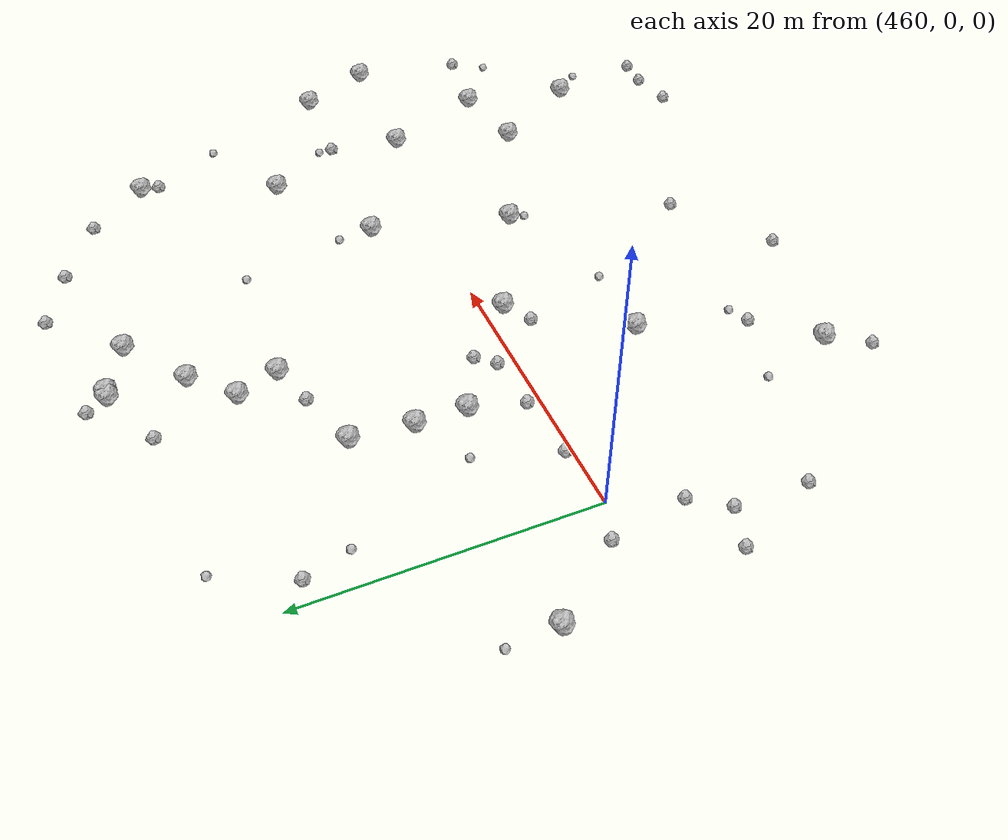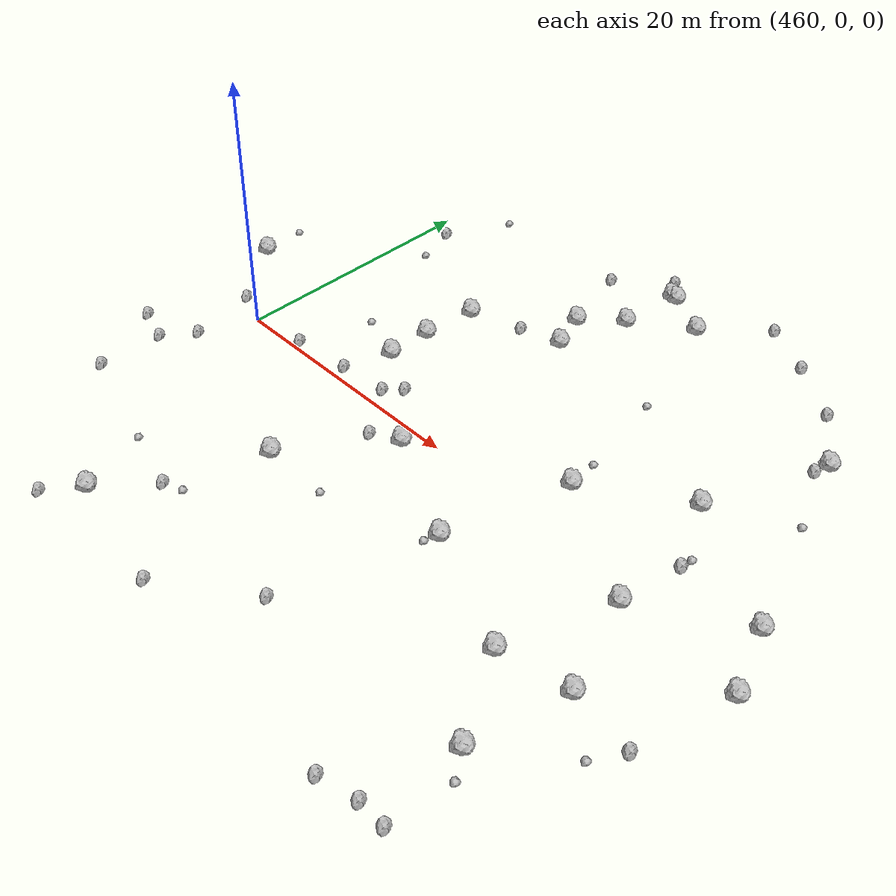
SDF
<sdf version="1.6">
 <world name="default">
  <include><uri>model://sun</uri></include>
  <model name="rock1_12_4">
   <include><uri>model://rock1</uri><pose>470.6151184059543 12.34620127630511 0.5 0 0 0</pose></include>
  </model>
  <model name="rock1_12_5">
   <include><uri>model://rock1</uri><pose>486.22943412523546 -5.646276234641231 0.5 0 0 0</pose></include>
  </model>
  <model name="rock1_12_6">
   <include><uri>model://rock1</uri><pose>500.5372356648056 -8.619539766389082 0.5 0 0 0</pose></include>
  </model>
  <model name="rock1_12_7">
   <include><uri>model://rock1</uri><pose>479.8587583547369 25.112894165132325 0.5 0 0 0</pose></include>
  </model>
  <model name="rock1_12_8">
   <include><uri>model://rock1</uri><pose>476.84056838398743 17.51059191724177 0.5 0 0 0</pose></include>
  </model>
  <model name="rock1_12_9">
   <include><uri>model://rock1</uri><pose>480.34715567198856 25.048559017967143 0.5 0 0 0</pose></include>
  </model>
  <model name="rock1_12_10">
   <include><uri>model://rock1</uri><pose>495.9661849295277 8.623692738267046 0.5 0 0 0</pose></include>
  </model>
  <model name="rock1_12_11">
   <include><uri>model://rock1</uri><pose>488.79647525616406 3.96769877872255 0.5 0 0 0</pose></include>
  </model>
  <model name="rock1_12_12">
   <include><uri>model://rock1</uri><pose>470.2062114927169 8.104621147277257 0.5 0 0 0</pose></include>
  </model>
  <model name="rock1_12_13">
   <include><uri>model://rock1</uri><pose>479.5690700209969 20.054851665725018 0.5 0 0 0</pose></include>
  </model>
  <model name="rock1_12_14">
   <include><uri>model://rock1</uri><pose>466.90203911596666 -19.544186248456636 0.5 0 0 0</pose></include>
  </model>
  <model name="rock1_12_15">
   <include><uri>model://rock1</uri><pose>477.8707376518834 -1.358789525222658 0.5 0 0 0</pose></include>
  </model>
  <model name="rock1_12_16">
   <include><uri>model://rock1</uri><pose>477.8711203572989 14.524592341520595 0.5 0 0 0</pose></include>
  </model>
  <model name="rock1_12_17">
   <include><uri>model://rock1</uri><pose>507.14053510778774 -1.9898403768795845 0.5 0 0 0</pose></include>
  </model>
  <model name="rock1_12_18">
   <include><uri>model://rock1</uri><pose>453.2257287647838 6.2590307215273455 0.5 0 0 0</pose></include>
  </model>
  <model name="rock1_12_19">
   <include><uri>model://rock1</uri><pose>495.226375937523 -9.645968867606506 0.5 0 0 0</pose></include>
  </model>
  <model name="rock1_12_20">
   <include><uri>model://rock1</uri><pose>498.92480981404907 -15.840052478565013 0.5 0 0 0</pose></include>
  </model>
  <model name="rock1_12_21">
   <include><uri>model://rock1</uri><pose>497.82548202293555 -1.4998680141681646 0.5 0 0 0</pose></include>
  </model>
  <model name="rock1_12_22">
   <include><uri>model://rock1</uri><pose>483.8711170464764 23.099798009684086 0.5 0 0 0</pose></include>
  </model>
  <model name="rock1_12_23">
   <include><uri>model://rock1</uri><pose>472.61430453250665 -8.606355690586629 0.5 0 0 0</pose></include>
  </model>
  <model name="rock1_12_24">
   <include><uri>model://rock1</uri><pose>505.1047096929792 2.986199472673981 0.5 0 0 0</pose></include>
  </model>
  <model name="rock1_12_25">
   <include><uri>model://rock1</uri><pose>470.1680328726894 4.573369024234175 0.5 0 0 0</pose></include>
  </model>
  <model name="rock1_12_26">
   <include><uri>model://rock1</uri><pose>499.5272384841301 17.865334878985173 0.5 0 0 0</pose></include>
  </model>
  <model name="rock2_12_0">
   <include><uri>model://rock2</uri><pose>472.9082335806386 1.2442766676785304 0.3 0 0 0</pose></include>
  </model>
  <model name="rock2_12_1">
   <include><uri>model://rock2</uri><pose>478.94073624219925 26.61789037535319 0.3 0 0 0</pose></include>
  </model>
  <model name="rock2_12_2">
   <include><uri>model://rock2</uri><pose>461.5976579464 18.325259100506983 0.3 0 0 0</pose></include>
  </model>
  <model name="rock2_12_3">
   <include><uri>model://rock2</uri><pose>499.2248780493118 16.627153532095186 0.3 0 0 0</pose></include>
  </model>
  <model name="rock2_12_4">
   <include><uri>model://rock2</uri><pose>492.0827567216489 25.072050500479456 0.3 0 0 0</pose></include>
  </model>
  <model name="rock2_12_5">
   <include><uri>model://rock2</uri><pose>498.5888669909872 3.4294246629389704 0.3 0 0 0</pose></include>
  </model>
  <model name="rock2_12_6">
   <include><uri>model://rock2</uri><pose>458.3522232453633 -4.3334630832857215 0.3 0 0 0</pose></include>
  </model>
  <model name="rock2_12_7">
   <include><uri>model://rock2</uri><pose>505.4834941784646 -9.384659312679677 0.3 0 0 0</pose></include>
  </model>
  <model name="rock2_12_8">
   <include><uri>model://rock2</uri><pose>475.81439648148006 -2.492878332179302 0.3 0 0 0</pose></include>
  </model>
  <model name="rock2_12_9">
   <include><uri>model://rock2</uri><pose>465.0641946011777 -22.08691860303254 0.3 0 0 0</pose></include>
  </model>
  <model name="rock2_12_10">
   <include><uri>model://rock2</uri><pose>464.4393917511466 0.5250547507130712 0.3 0 0 0</pose></include>
  </model>
  <model name="rock2_12_11">
   <include><uri>model://rock2</uri><pose>474.7049596662432 13.611505052982785 0.3 0 0 0</pose></include>
  </model>
  <model name="rock2_12_12">
   <include><uri>model://rock2</uri><pose>499.7164451895772 -22.299358047868143 0.3 0 0 0</pose></include>
  </model>
  <model name="rock2_12_13">
   <include><uri>model://rock2</uri><pose>456.67259628061504 -6.691129351137505 0.3 0 0 0</pose></include>
  </model>
  <model name="rock2_12_14">
   <include><uri>model://rock2</uri><pose>482.81761955478606 -16.90112237605024 0.3 0 0 0</pose></include>
  </model>
  <model name="rock2_12_15">
   <include><uri>model://rock2</uri><pose>476.4339155366638 -21.549568471011185 0.3 0 0 0</pose></include>
  </model>
  <model name="rock2_12_16">
   <include><uri>model://rock2</uri><pose>474.00444261770303 2.436608043646686 0.3 0 0 0</pose></include>
  </model>
  <model name="rock2_12_17">
   <include><uri>model://rock2</uri><pose>475.24888253688107 23.280431801240013 0.3 0 0 0</pose></include>
  </model>
  <model name="rock2_12_18">
   <include><uri>model://rock2</uri><pose>456.5808986373417 -11.730926959623439 0.3 0 0 0</pose></include>
  </model>
  <model name="rock2_12_19">
   <include><uri>model://rock2</uri><pose>469.0216573170071 0.9460546897607038 0.3 0 0 0</pose></include>
  </model>
  <model name="rock2_12_20">
   <include><uri>model://rock2</uri><pose>453.8222277324822 -5.761836847316136 0.3 0 0 0</pose></include>
  </model>
  <model name="rock2_12_21">
   <include><uri>model://rock2</uri><pose>496.42857731631597 22.0758337049393 0.3 0 0 0</pose></include>
  </model>
  <model name="rock2_12_22">
   <include><uri>model://rock2</uri><pose>488.06131537822444 27.254832841472762 0.3 0 0 0</pose></include>
  </model>
  <model name="rock2_12_23">
   <include><uri>model://rock2</uri><pose>457.2869290880362 1.072498411970983 0.3 0 0 0</pose></include>
  </model>
  <model name="rock2_12_24">
   <include><uri>model://rock2</uri><pose>470.100237107484 -15.709770790668234 0.3 0 0 0</pose></include>
  </model>
  <model name="rock2_12_25">
   <include><uri>model://rock2</uri><pose>497.61489401313224 -22.226576866354176 0.3 0 0 0</pose></include>
  </model>
  <model name="rock2_12_26">
   <include><uri>model://rock2</uri><pose>494.7692646295467 -22.86494145260165 0.3 0 0 0</pose></include>
  </model>
  <model name="rock3_12_0">
   <include><uri>model://rock3</uri><pose>471.51711174885133 -15.141390871853822 0.2 0 0 0</pose></include>
  </model>
  <model name="rock3_12_1">
   <include><uri>model://rock3</uri><pose>452.9793274020025 9.714597258592676 0.2 0 0 0</pose></include>
  </model>
  <model name="rock3_12_2">
   <include><uri>model://rock3</uri><pose>485.84907309873415 -6.717210711082423 0.2 0 0 0</pose></include>
  </model>
  <model name="rock3_12_3">
   <include><uri>model://rock3</uri><pose>487.03727088631086 13.66212681788538 0.2 0 0 0</pose></include>
  </model>
  <model name="rock3_12_4">
   <include><uri>model://rock3</uri><pose>465.10127636850575 -14.27830908740236 0.2 0 0 0</pose></include>
  </model>
  <model name="rock3_12_5">
   <include><uri>model://rock3</uri><pose>504.18947367697024 -11.58357631877584 0.2 0 0 0</pose></include>
  </model>
  <model name="rock3_12_6">
   <include><uri>model://rock3</uri><pose>498.6526568920841 4.339399656548132 0.2 0 0 0</pose></include>
  </model>
  <model name="rock3_12_7">
   <include><uri>model://rock3</uri><pose>500.2373729231133 -17.701055507894136 0.2 0 0 0</pose></include>
  </model>
  <model name="rock3_12_8">
   <include><uri>model://rock3</uri><pose>488.51539389510276 6.391105026315458 0.2 0 0 0</pose></include>
  </model>
  <model name="rock3_12_9">
   <include><uri>model://rock3</uri><pose>501.712003634121 11.719184074793802 0.2 0 0 0</pose></include>
  </model>
  <model name="rock3_12_10">
   <include><uri>model://rock3</uri><pose>463.9677779320713 23.20908874467505 0.2 0 0 0</pose></include>
  </model>
  <model name="rock3_12_11">
   <include><uri>model://rock3</uri><pose>477.9083874394329 -8.683365931918757 0.2 0 0 0</pose></include>
  </model>
  <model name="rock3_12_12">
   <include><uri>model://rock3</uri><pose>462.5674538235834 15.028663734386065 0.2 0 0 0</pose></include>
  </model>
  <model name="rock3_12_13">
   <include><uri>model://rock3</uri><pose>466.25122835616327 6.021645414418451 0.2 0 0 0</pose></include>
  </model>
 </world>
</sdf>
